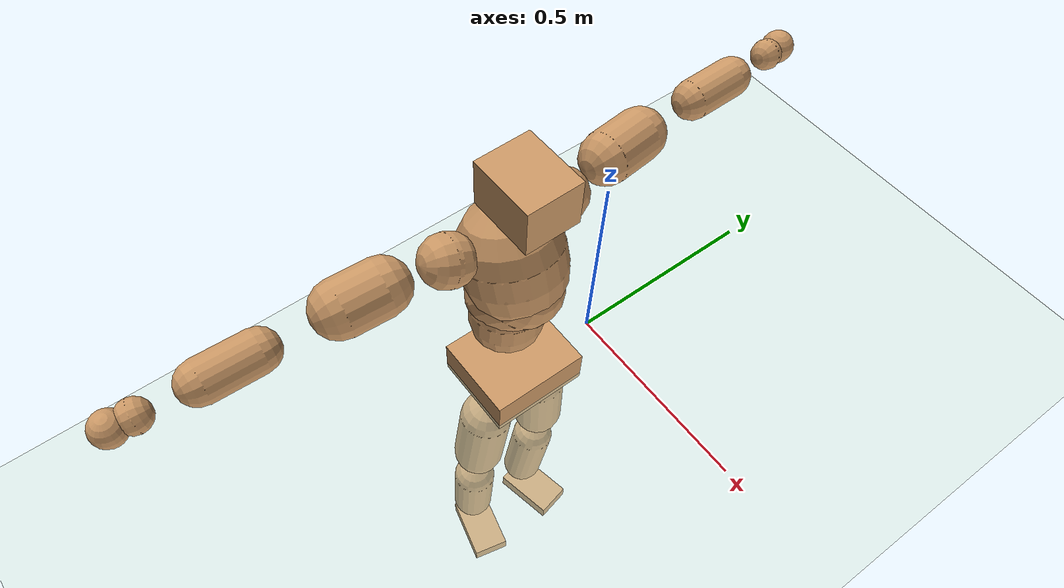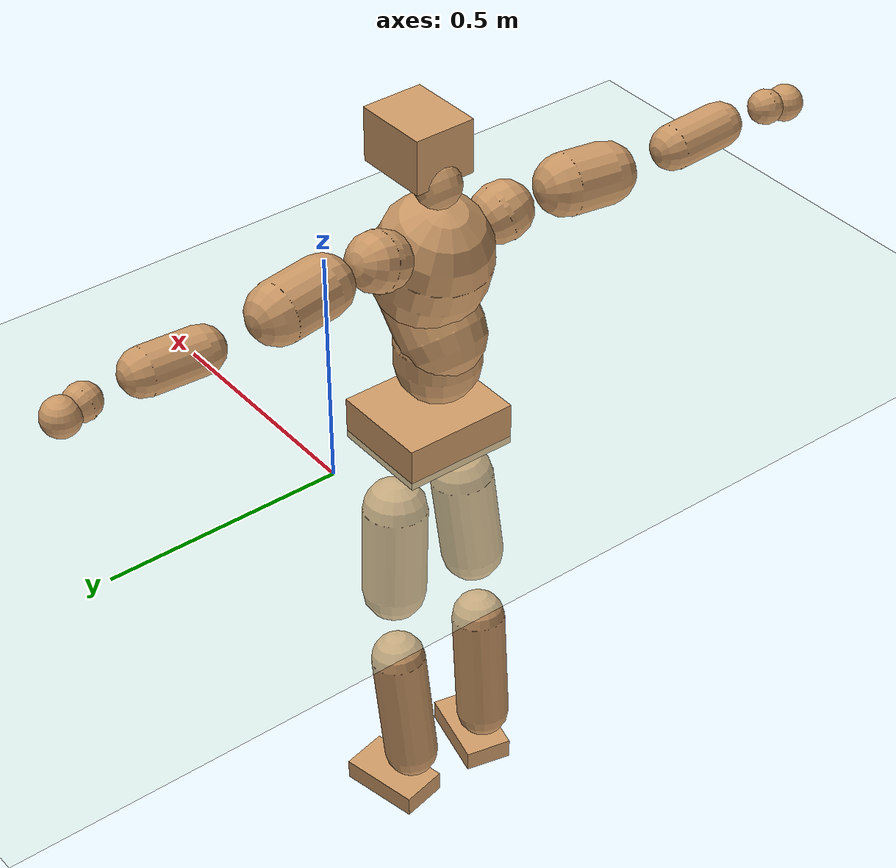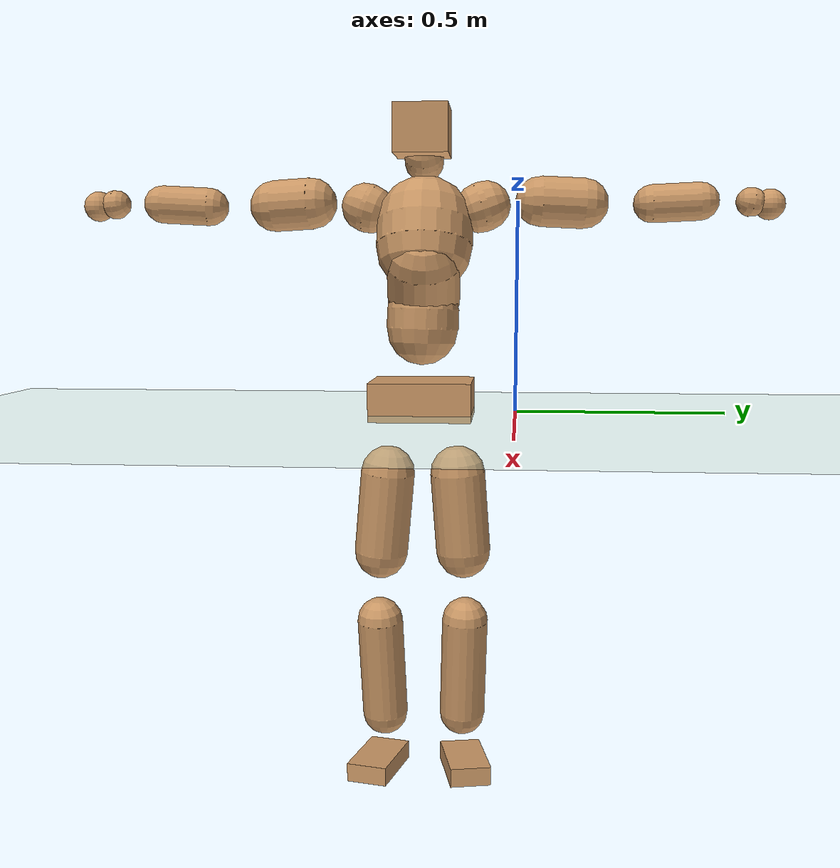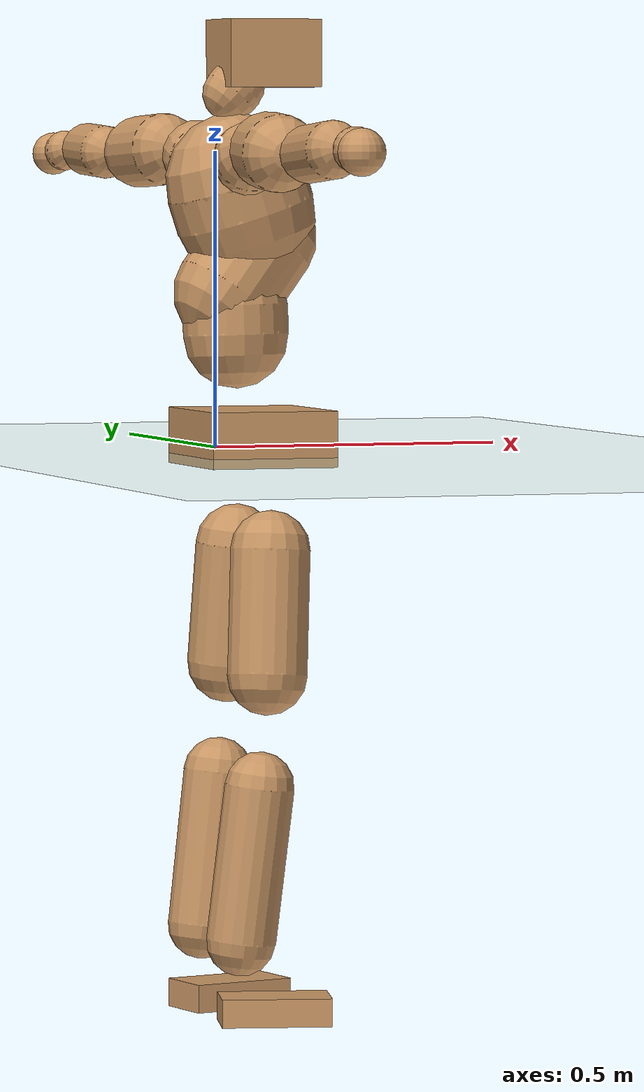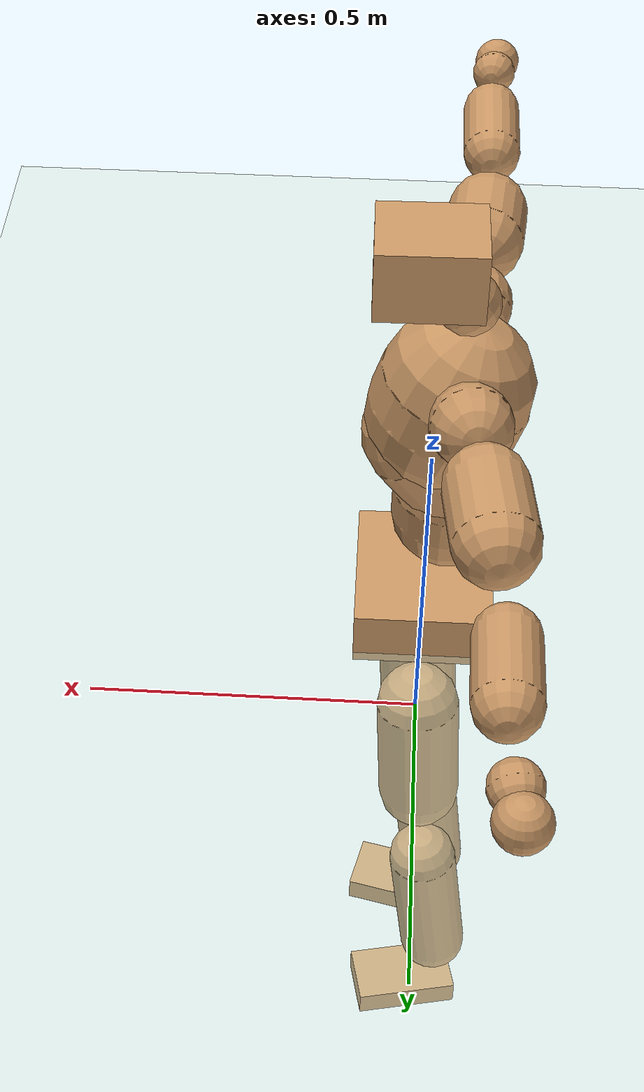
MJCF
<mujoco model="humanoid">
  <compiler coordinate="local" angle="radian"/>
  <default>
    <joint damping="0.0" armature="0.01" stiffness="0.0" limited="true"/>
    <geom conaffinity="1" condim="3" contype="7" margin="0.001" rgba="0.8 0.6 .4 1"/>
  </default>
  <asset>
    <texture type="skybox" builtin="gradient" rgb1=".4 .5 .6" rgb2="0 0 0" width="100" height="100"/>
    <texture builtin="flat" height="1278" mark="cross" markrgb="1 1 1" name="texgeom" random="0.01" rgb1="0.8 0.6 0.4" rgb2="0.8 0.6 0.4" type="cube" width="127"/>
    <texture builtin="checker" height="100" name="texplane" rgb1="0 0 0" rgb2="0.8 0.8 0.8" type="2d" width="100"/>
    <material name="MatPlane" reflectance="0.5" shininess="1" specular="1" texrepeat="60 60" texture="texplane"/>
    <material name="geom" texture="texgeom" texuniform="true"/>
  </asset>
  <worldbody>
    <light cutoff="100" diffuse="1 1 1" dir="-0 0 -1.3" directional="true" exponent="1" pos="0 0 1.3" specular=".1 .1 .1"/>
    <geom conaffinity="1" condim="3" name="floor" pos="0 0 0" rgba="0.8 0.9 0.8 1" size="100 100 .2" type="plane" material="MatPlane"/>
    <body name="Pelvis" pos="-0.0017 -0.2271 0.0419">
      <freejoint name="Pelvis"/>
      <geom type="box" contype="1" conaffinity="1" density="5359.375166" pos="-0.0056 -0.0000 -0.0140" size="0.1076 0.1225 0.0464" quat="1.0000 0.0000 0.0000 0.0017" name="Pelvis"/>
      <body name="L_Hip" pos="-0.0018 0.0797 -0.0995">
        <joint name="L_Hip_x" type="hinge" pos="0 0 0" axis="1 0 0" stiffness="1600" damping="160" armature="0.02" range="-180.0000 180.0000"/>
        <joint name="L_Hip_y" type="hinge" pos="0 0 0" axis="0 1 0" stiffness="1600" damping="160" armature="0.02" range="-180.0000 180.0000"/>
        <joint name="L_Hip_z" type="hinge" pos="0 0 0" axis="0 0 1" stiffness="1600" damping="160" armature="0.02" range="-180.0000 180.0000"/>
        <geom type="capsule" contype="1" conaffinity="1" density="2040.816327" size="0.0671" fromto="-0.0051 0.0070 -0.0967 -0.0156 0.0213 -0.2965" name="L_Hip"/>
        <body name="L_Knee" pos="-0.0207 0.0283 -0.3932">
          <joint name="L_Knee_x" type="hinge" pos="0 0 0" axis="1 0 0" stiffness="1600" damping="160" armature="0.02" range="-180.0000 180.0000"/>
          <joint name="L_Knee_y" type="hinge" pos="0 0 0" axis="0 1 0" stiffness="1600" damping="160" armature="0.02" range="-180.0000 180.0000"/>
          <joint name="L_Knee_z" type="hinge" pos="0 0 0" axis="0 0 1" stiffness="1600" damping="160" armature="0.02" range="-180.0000 180.0000"/>
          <geom type="capsule" contype="1" conaffinity="1" density="1234.567901" size="0.0577" fromto="-0.0103 -0.0026 -0.0870 -0.0405 -0.0101 -0.3428" name="L_Knee"/>
          <body name="L_Ankle" pos="-0.0508 -0.0127 -0.4298">
            <joint name="L_Ankle_x" type="hinge" pos="0 0 0" axis="1 0 0" stiffness="1600" damping="160" armature="0.02" range="-180.0000 180.0000"/>
            <joint name="L_Ankle_y" type="hinge" pos="0 0 0" axis="0 1 0" stiffness="1600" damping="160" armature="0.02" range="-180.0000 180.0000"/>
            <joint name="L_Ankle_z" type="hinge" pos="0 0 0" axis="0 0 1" stiffness="1600" damping="160" armature="0.02" range="-180.0000 180.0000"/>
            <geom type="box" contype="1" conaffinity="1" density="1000" pos="0.0618 0.0133 -0.0311" size="0.0888 0.0512 0.0235" quat="0.9944 0.0000 0.0000 0.1059" name="L_Ankle"/>
            <body name="L_Toe" pos="0.1236 0.0266 -0.0622">
              <joint name="L_Toe_x" type="hinge" pos="0 0 0" axis="1 0 0" stiffness="1000" damping="100" armature="0.02" range="-180.0000 180.0000"/>
              <joint name="L_Toe_y" type="hinge" pos="0 0 0" axis="0 1 0" stiffness="1000" damping="100" armature="0.02" range="-180.0000 180.0000"/>
              <joint name="L_Toe_z" type="hinge" pos="0 0 0" axis="0 0 1" stiffness="1000" damping="100" armature="0.02" range="-180.0000 180.0000"/>
              <geom type="box" contype="1" conaffinity="1" density="8251131.887404" pos="0.0000 0.0000 0.0301" size="0.0011 0.0026 0.0011" quat="0.9937 0.0000 0.0000 0.1118" name="L_Toe"/>
            </body>
          </body>
        </body>
      </body>
      <body name="R_Hip" pos="0.0025 -0.0767 -0.1009">
        <joint name="R_Hip_x" type="hinge" pos="0 0 0" axis="1 0 0" stiffness="1600" damping="160" armature="0.02" range="-180.0000 180.0000"/>
        <joint name="R_Hip_y" type="hinge" pos="0 0 0" axis="0 1 0" stiffness="1600" damping="160" armature="0.02" range="-180.0000 180.0000"/>
        <joint name="R_Hip_z" type="hinge" pos="0 0 0" axis="0 0 1" stiffness="1600" damping="160" armature="0.02" range="-180.0000 180.0000"/>
        <geom type="capsule" contype="1" conaffinity="1" density="2040.816327" size="0.0662" fromto="-0.0054 -0.0090 -0.0957 -0.0170 -0.0282 -0.3001" name="R_Hip"/>
        <body name="R_Knee" pos="-0.0224 -0.0371 -0.3957">
          <joint name="R_Knee_x" type="hinge" pos="0 0 0" axis="1 0 0" stiffness="1600" damping="160" armature="0.02" range="-180.0000 180.0000"/>
          <joint name="R_Knee_y" type="hinge" pos="0 0 0" axis="0 1 0" stiffness="1600" damping="160" armature="0.02" range="-180.0000 180.0000"/>
          <joint name="R_Knee_z" type="hinge" pos="0 0 0" axis="0 0 1" stiffness="1600" damping="160" armature="0.02" range="-180.0000 180.0000"/>
          <geom type="capsule" contype="1" conaffinity="1" density="1234.567901" size="0.0575" fromto="-0.0099 0.0029 -0.0869 -0.0391 0.0116 -0.3427" name="R_Knee"/>
          <body name="R_Ankle" pos="-0.049 0.0146 -0.4297">
            <joint name="R_Ankle_x" type="hinge" pos="0 0 0" axis="1 0 0" stiffness="1600" damping="160" armature="0.02" range="-180.0000 180.0000"/>
            <joint name="R_Ankle_y" type="hinge" pos="0 0 0" axis="0 1 0" stiffness="1600" damping="160" armature="0.02" range="-180.0000 180.0000"/>
            <joint name="R_Ankle_z" type="hinge" pos="0 0 0" axis="0 0 1" stiffness="1600" damping="160" armature="0.02" range="-180.0000 180.0000"/>
            <geom type="box" contype="1" conaffinity="1" density="1000.000022" pos="0.0643 -0.0149 -0.0263" size="0.0908 0.0512 0.0232" quat="0.9936 0.0000 0.0000 -0.1133" name="R_Ankle"/>
            <body name="R_Toe" pos="0.1286 -0.0297 -0.0525">
              <joint name="R_Toe_x" type="hinge" pos="0 0 0" axis="1 0 0" stiffness="1000" damping="100" armature="0.02" range="-180.0000 180.0000"/>
              <joint name="R_Toe_y" type="hinge" pos="0 0 0" axis="0 1 0" stiffness="1000" damping="100" armature="0.02" range="-180.0000 180.0000"/>
              <joint name="R_Toe_z" type="hinge" pos="0 0 0" axis="0 0 1" stiffness="1000" damping="100" armature="0.02" range="-180.0000 180.0000"/>
              <geom type="box" contype="1" conaffinity="1" density="7786952.432322" pos="0.0000 0.0000 0.0283" size="0.001 0.0026 0.0013" quat="0.9945 0.0000 0.0000 -0.1043" name="R_Toe"/>
            </body>
          </body>
        </body>
      </body>
      <body name="Torso" pos="-0.0343 -0.0031 0.1165">
        <joint name="Torso_x" type="hinge" pos="0 0 0" axis="1 0 0" stiffness="2000" damping="200" armature="0.02" range="-180.0000 180.0000"/>
        <joint name="Torso_y" type="hinge" pos="0 0 0" axis="0 1 0" stiffness="2000" damping="200" armature="0.02" range="-180.0000 180.0000"/>
        <joint name="Torso_z" type="hinge" pos="0 0 0" axis="0 0 1" stiffness="2000" damping="200" armature="0.02" range="-180.0000 180.0000"/>
        <geom type="capsule" contype="1" conaffinity="1" density="2040.816327" size="0.088" fromto="-0.0023 0.0027 0.0879 -0.0010 0.0012 0.0386" name="Torso"/>
        <body name="Spine" pos="-0.0033 0.004 0.1266">
          <joint name="Spine_x" type="hinge" pos="0 0 0" axis="1 0 0" stiffness="2000" damping="200" armature="0.02" range="-180.0000 180.0000"/>
          <joint name="Spine_y" type="hinge" pos="0 0 0" axis="0 1 0" stiffness="2000" damping="200" armature="0.02" range="-180.0000 180.0000"/>
          <joint name="Spine_z" type="hinge" pos="0 0 0" axis="0 0 1" stiffness="2000" damping="200" armature="0.02" range="-180.0000 180.0000"/>
          <geom type="capsule" contype="1" conaffinity="1" density="2040.816327" size="0.0885" fromto="0.0526 0.0038 0.0711 -0.0134 -0.0010 -0.0181" name="Spine"/>
          <body name="Chest" pos="0.0392 0.0028 0.053">
            <joint name="Chest_x" type="hinge" pos="0 0 0" axis="1 0 0" stiffness="2000" damping="200" armature="0.02" range="-180.0000 180.0000"/>
            <joint name="Chest_y" type="hinge" pos="0 0 0" axis="0 1 0" stiffness="2000" damping="200" armature="0.02" range="-180.0000 180.0000"/>
            <joint name="Chest_z" type="hinge" pos="0 0 0" axis="0 0 1" stiffness="2000" damping="200" armature="0.02" range="-180.0000 180.0000"/>
            <geom type="capsule" contype="1" conaffinity="1" density="2040.816327" size="0.1163" fromto="-0.0359 -0.0003 0.1106 -0.0183 -0.0002 0.0566" name="Chest"/>
            <body name="Neck" pos="-0.0651 -0.0012 0.2333">
              <joint name="Neck_x" type="hinge" pos="0 0 0" axis="1 0 0" stiffness="1000" damping="100" armature="0.02" range="-180.0000 180.0000"/>
              <joint name="Neck_y" type="hinge" pos="0 0 0" axis="0 1 0" stiffness="1000" damping="100" armature="0.02" range="-180.0000 180.0000"/>
              <joint name="Neck_z" type="hinge" pos="0 0 0" axis="0 0 1" stiffness="1000" damping="100" armature="0.02" range="-180.0000 180.0000"/>
              <geom type="capsule" contype="1" conaffinity="1" density="1000" size="0.0469" fromto="0.0307 -0.0007 0.0354 0.0207 -0.0005 0.0239" name="Neck"/>
              <body name="Head" pos="0.0514 -0.0012 0.0593">
                <joint name="Head_x" type="hinge" pos="0 0 0" axis="1 0 0" stiffness="1000" damping="100" armature="0.02" range="-180.0000 180.0000"/>
                <joint name="Head_y" type="hinge" pos="0 0 0" axis="0 1 0" stiffness="1000" damping="100" armature="0.02" range="-180.0000 180.0000"/>
                <joint name="Head_z" type="hinge" pos="0 0 0" axis="0 0 1" stiffness="1000" damping="100" armature="0.02" range="-180.0000 180.0000"/>
                <geom type="box" contype="1" conaffinity="1" density="2250.00019" pos="0.0267 0.0004 0.0307" size="0.0789 0.0646 0.0559" quat="1.0000 0.0000 0.0000 0.0071" name="Head"/>
              </body>
            </body>
            <body name="L_Thorax" pos="-0.047 0.0905 0.135">
              <joint name="L_Thorax_x" type="hinge" pos="0 0 0" axis="1 0 0" stiffness="1000" damping="100" armature="0.02" range="-180.0000 180.0000"/>
              <joint name="L_Thorax_y" type="hinge" pos="0 0 0" axis="0 1 0" stiffness="1000" damping="100" armature="0.02" range="-180.0000 180.0000"/>
              <joint name="L_Thorax_z" type="hinge" pos="0 0 0" axis="0 0 1" stiffness="1000" damping="100" armature="0.02" range="-180.0000 180.0000"/>
              <geom type="capsule" contype="1" conaffinity="1" density="1000" size="0.0597" fromto="-0.0079 0.0558 0.0198 -0.0059 0.0415 0.0148" name="L_Thorax"/>
              <body name="L_Shoulder" pos="-0.0138 0.0973 0.0346">
                <joint name="L_Shoulder_x" type="hinge" pos="0 0 0" axis="1 0 0" stiffness="1000" damping="100" armature="0.02" range="-720.0000 720.0000"/>
                <joint name="L_Shoulder_y" type="hinge" pos="0 0 0" axis="0 1 0" stiffness="1000" damping="100" armature="0.02" range="-720.0000 720.0000"/>
                <joint name="L_Shoulder_z" type="hinge" pos="0 0 0" axis="0 0 1" stiffness="1000" damping="100" armature="0.02" range="-720.0000 720.0000"/>
                <geom type="capsule" contype="1" conaffinity="1" density="1000" size="0.0607" fromto="-0.0113 0.0900 -0.0039 -0.0244 0.1942 -0.0085" name="L_Shoulder"/>
                <body name="L_Elbow" pos="-0.0357 0.2842 -0.0124">
                  <joint name="L_Elbow_x" type="hinge" pos="0 0 0" axis="1 0 0" stiffness="1000" damping="100" armature="0.02" range="-720.0000 720.0000"/>
                  <joint name="L_Elbow_y" type="hinge" pos="0 0 0" axis="0 1 0" stiffness="1000" damping="100" armature="0.02" range="-720.0000 720.0000"/>
                  <joint name="L_Elbow_z" type="hinge" pos="0 0 0" axis="0 0 1" stiffness="1000" damping="100" armature="0.02" range="-720.0000 720.0000"/>
                  <geom type="capsule" contype="1" conaffinity="1" density="1000" size="0.0456" fromto="0.0006 0.0755 0.0034 0.0016 0.1903 0.0085" name="L_Elbow"/>
                  <body name="L_Wrist" pos="0.0022 0.2657 0.0119">
                    <joint name="L_Wrist_x" type="hinge" pos="0 0 0" axis="1 0 0" stiffness="600" damping="60" armature="0.02" range="-180.0000 180.0000"/>
                    <joint name="L_Wrist_y" type="hinge" pos="0 0 0" axis="0 1 0" stiffness="600" damping="60" armature="0.02" range="-180.0000 180.0000"/>
                    <joint name="L_Wrist_z" type="hinge" pos="0 0 0" axis="0 0 1" stiffness="600" damping="60" armature="0.02" range="-180.0000 180.0000"/>
                    <geom type="capsule" contype="1" conaffinity="1" density="1000" size="0.035" fromto="-0.0074 0.0452 -0.0053 -0.0077 0.0471 -0.0056" name="L_Wrist"/>
                    <body name="L_Hand" pos="-0.0151 0.0923 -0.0109">
                      <joint name="L_Hand_x" type="hinge" pos="0 0 0" axis="1 0 0" stiffness="600" damping="60" armature="0.02" range="-180.0000 180.0000"/>
                      <joint name="L_Hand_y" type="hinge" pos="0 0 0" axis="0 1 0" stiffness="600" damping="60" armature="0.02" range="-180.0000 180.0000"/>
                      <joint name="L_Hand_z" type="hinge" pos="0 0 0" axis="0 0 1" stiffness="600" damping="60" armature="0.02" range="-180.0000 180.0000"/>
                      <geom type="sphere" contype="1" conaffinity="1" density="1000" size="0.0371" pos="0.0000 0.0000 0.0000" name="L_Hand"/>
                    </body>
                  </body>
                </body>
              </body>
            </body>
            <body name="R_Thorax" pos="-0.0505 -0.0908 0.1333">
              <joint name="R_Thorax_x" type="hinge" pos="0 0 0" axis="1 0 0" stiffness="1000" damping="100" armature="0.02" range="-180.0000 180.0000"/>
              <joint name="R_Thorax_y" type="hinge" pos="0 0 0" axis="0 1 0" stiffness="1000" damping="100" armature="0.02" range="-180.0000 180.0000"/>
              <joint name="R_Thorax_z" type="hinge" pos="0 0 0" axis="0 0 1" stiffness="1000" damping="100" armature="0.02" range="-180.0000 180.0000"/>
              <geom type="capsule" contype="1" conaffinity="1" density="1000" size="0.0587" fromto="-0.0070 -0.0550 0.0192 -0.0057 -0.0447 0.0156" name="R_Thorax"/>
              <body name="R_Shoulder" pos="-0.0127 -0.0998 0.0349">
                <joint name="R_Shoulder_x" type="hinge" pos="0 0 0" axis="1 0 0" stiffness="1000" damping="100" armature="0.02" range="-720.0000 720.0000"/>
                <joint name="R_Shoulder_y" type="hinge" pos="0 0 0" axis="0 1 0" stiffness="1000" damping="100" armature="0.02" range="-720.0000 720.0000"/>
                <joint name="R_Shoulder_z" type="hinge" pos="0 0 0" axis="0 0 1" stiffness="1000" damping="100" armature="0.02" range="-720.0000 720.0000"/>
                <geom type="capsule" contype="1" conaffinity="1" density="1000" size="0.0625" fromto="-0.0086 -0.0920 -0.0050 -0.0171 -0.1829 -0.0100" name="R_Shoulder"/>
                <body name="R_Elbow" pos="-0.0257 -0.2749 -0.015">
                  <joint name="R_Elbow_x" type="hinge" pos="0 0 0" axis="1 0 0" stiffness="1000" damping="100" armature="0.02" range="-720.0000 720.0000"/>
                  <joint name="R_Elbow_y" type="hinge" pos="0 0 0" axis="0 1 0" stiffness="1000" damping="100" armature="0.02" range="-720.0000 720.0000"/>
                  <joint name="R_Elbow_z" type="hinge" pos="0 0 0" axis="0 0 1" stiffness="1000" damping="100" armature="0.02" range="-720.0000 720.0000"/>
                  <geom type="capsule" contype="1" conaffinity="1" density="1000" size="0.0461" fromto="0.0002 -0.0760 0.0043 0.0005 -0.1954 0.0110" name="R_Elbow"/>
                  <body name="R_Wrist" pos="0.0007 -0.2714 0.0153">
                    <joint name="R_Wrist_x" type="hinge" pos="0 0 0" axis="1 0 0" stiffness="600" damping="60" armature="0.02" range="-180.0000 180.0000"/>
                    <joint name="R_Wrist_y" type="hinge" pos="0 0 0" axis="0 1 0" stiffness="600" damping="60" armature="0.02" range="-180.0000 180.0000"/>
                    <joint name="R_Wrist_z" type="hinge" pos="0 0 0" axis="0 0 1" stiffness="600" damping="60" armature="0.02" range="-180.0000 180.0000"/>
                    <geom type="capsule" contype="1" conaffinity="1" density="1000" size="0.0355" fromto="-0.0059 -0.0451 -0.0040 -0.0062 -0.0471 -0.0042" name="R_Wrist"/>
                    <body name="R_Hand" pos="-0.0122 -0.0922 -0.0082">
                      <joint name="R_Hand_x" type="hinge" pos="0 0 0" axis="1 0 0" stiffness="600" damping="60" armature="0.02" range="-180.0000 180.0000"/>
                      <joint name="R_Hand_y" type="hinge" pos="0 0 0" axis="0 1 0" stiffness="600" damping="60" armature="0.02" range="-180.0000 180.0000"/>
                      <joint name="R_Hand_z" type="hinge" pos="0 0 0" axis="0 0 1" stiffness="600" damping="60" armature="0.02" range="-180.0000 180.0000"/>
                      <geom type="sphere" contype="1" conaffinity="1" density="1000" size="0.0371" pos="0.0000 0.0000 0.0000" name="R_Hand"/>
                    </body>
                  </body>
                </body>
              </body>
            </body>
          </body>
        </body>
      </body>
    </body>
  </worldbody>
  <actuator>
    <motor name="L_Hip_x" joint="L_Hip_x" gear="500"/>
    <motor name="L_Hip_y" joint="L_Hip_y" gear="500"/>
    <motor name="L_Hip_z" joint="L_Hip_z" gear="500"/>
    <motor name="L_Knee_x" joint="L_Knee_x" gear="500"/>
    <motor name="L_Knee_y" joint="L_Knee_y" gear="500"/>
    <motor name="L_Knee_z" joint="L_Knee_z" gear="500"/>
    <motor name="L_Ankle_x" joint="L_Ankle_x" gear="500"/>
    <motor name="L_Ankle_y" joint="L_Ankle_y" gear="500"/>
    <motor name="L_Ankle_z" joint="L_Ankle_z" gear="500"/>
    <motor name="L_Toe_x" joint="L_Toe_x" gear="500"/>
    <motor name="L_Toe_y" joint="L_Toe_y" gear="500"/>
    <motor name="L_Toe_z" joint="L_Toe_z" gear="500"/>
    <motor name="R_Hip_x" joint="R_Hip_x" gear="500"/>
    <motor name="R_Hip_y" joint="R_Hip_y" gear="500"/>
    <motor name="R_Hip_z" joint="R_Hip_z" gear="500"/>
    <motor name="R_Knee_x" joint="R_Knee_x" gear="500"/>
    <motor name="R_Knee_y" joint="R_Knee_y" gear="500"/>
    <motor name="R_Knee_z" joint="R_Knee_z" gear="500"/>
    <motor name="R_Ankle_x" joint="R_Ankle_x" gear="500"/>
    <motor name="R_Ankle_y" joint="R_Ankle_y" gear="500"/>
    <motor name="R_Ankle_z" joint="R_Ankle_z" gear="500"/>
    <motor name="R_Toe_x" joint="R_Toe_x" gear="500"/>
    <motor name="R_Toe_y" joint="R_Toe_y" gear="500"/>
    <motor name="R_Toe_z" joint="R_Toe_z" gear="500"/>
    <motor name="Torso_x" joint="Torso_x" gear="500"/>
    <motor name="Torso_y" joint="Torso_y" gear="500"/>
    <motor name="Torso_z" joint="Torso_z" gear="500"/>
    <motor name="Spine_x" joint="Spine_x" gear="500"/>
    <motor name="Spine_y" joint="Spine_y" gear="500"/>
    <motor name="Spine_z" joint="Spine_z" gear="500"/>
    <motor name="Chest_x" joint="Chest_x" gear="500"/>
    <motor name="Chest_y" joint="Chest_y" gear="500"/>
    <motor name="Chest_z" joint="Chest_z" gear="500"/>
    <motor name="Neck_x" joint="Neck_x" gear="500"/>
    <motor name="Neck_y" joint="Neck_y" gear="500"/>
    <motor name="Neck_z" joint="Neck_z" gear="500"/>
    <motor name="Head_x" joint="Head_x" gear="500"/>
    <motor name="Head_y" joint="Head_y" gear="500"/>
    <motor name="Head_z" joint="Head_z" gear="500"/>
    <motor name="L_Thorax_x" joint="L_Thorax_x" gear="500"/>
    <motor name="L_Thorax_y" joint="L_Thorax_y" gear="500"/>
    <motor name="L_Thorax_z" joint="L_Thorax_z" gear="500"/>
    <motor name="L_Shoulder_x" joint="L_Shoulder_x" gear="500"/>
    <motor name="L_Shoulder_y" joint="L_Shoulder_y" gear="500"/>
    <motor name="L_Shoulder_z" joint="L_Shoulder_z" gear="500"/>
    <motor name="L_Elbow_x" joint="L_Elbow_x" gear="500"/>
    <motor name="L_Elbow_y" joint="L_Elbow_y" gear="500"/>
    <motor name="L_Elbow_z" joint="L_Elbow_z" gear="500"/>
    <motor name="L_Wrist_x" joint="L_Wrist_x" gear="500"/>
    <motor name="L_Wrist_y" joint="L_Wrist_y" gear="500"/>
    <motor name="L_Wrist_z" joint="L_Wrist_z" gear="500"/>
    <motor name="L_Hand_x" joint="L_Hand_x" gear="500"/>
    <motor name="L_Hand_y" joint="L_Hand_y" gear="500"/>
    <motor name="L_Hand_z" joint="L_Hand_z" gear="500"/>
    <motor name="R_Thorax_x" joint="R_Thorax_x" gear="500"/>
    <motor name="R_Thorax_y" joint="R_Thorax_y" gear="500"/>
    <motor name="R_Thorax_z" joint="R_Thorax_z" gear="500"/>
    <motor name="R_Shoulder_x" joint="R_Shoulder_x" gear="500"/>
    <motor name="R_Shoulder_y" joint="R_Shoulder_y" gear="500"/>
    <motor name="R_Shoulder_z" joint="R_Shoulder_z" gear="500"/>
    <motor name="R_Elbow_x" joint="R_Elbow_x" gear="500"/>
    <motor name="R_Elbow_y" joint="R_Elbow_y" gear="500"/>
    <motor name="R_Elbow_z" joint="R_Elbow_z" gear="500"/>
    <motor name="R_Wrist_x" joint="R_Wrist_x" gear="500"/>
    <motor name="R_Wrist_y" joint="R_Wrist_y" gear="500"/>
    <motor name="R_Wrist_z" joint="R_Wrist_z" gear="500"/>
    <motor name="R_Hand_x" joint="R_Hand_x" gear="500"/>
    <motor name="R_Hand_y" joint="R_Hand_y" gear="500"/>
    <motor name="R_Hand_z" joint="R_Hand_z" gear="500"/>
  </actuator>
  <contact>
    <exclude body1="Torso" body2="Chest"/>
    <exclude body1="Head" body2="Chest"/>
    <exclude body1="R_Knee" body2="R_Toe"/>
    <exclude body1="R_Knee" body2="L_Ankle"/>
    <exclude body1="R_Knee" body2="L_Toe"/>
    <exclude body1="L_Knee" body2="L_Toe"/>
    <exclude body1="L_Knee" body2="R_Ankle"/>
    <exclude body1="L_Knee" body2="R_Toe"/>
    <exclude body1="L_Shoulder" body2="Chest"/>
    <exclude body1="R_Shoulder" body2="Chest"/>
  </contact>
  <sensor/>
  <size njmax="700" nconmax="700"/>
</mujoco>
